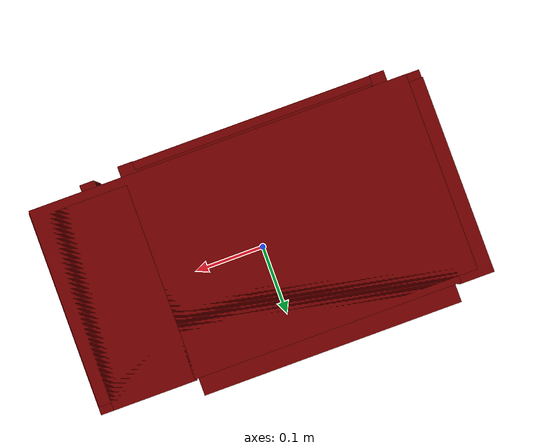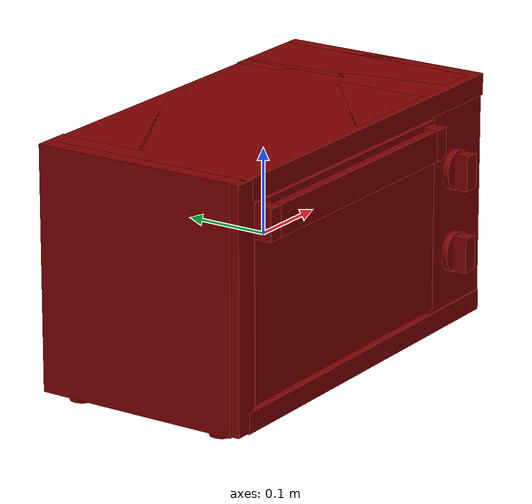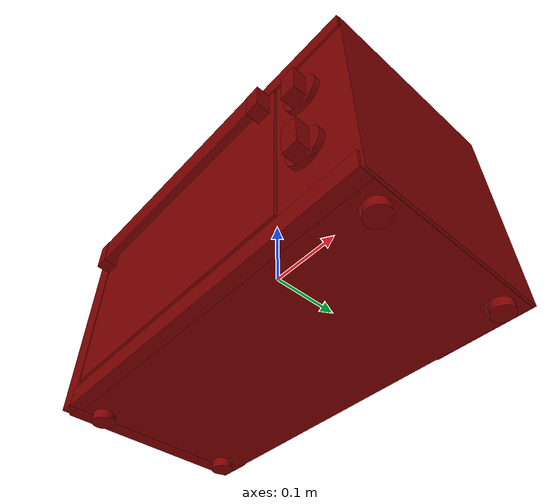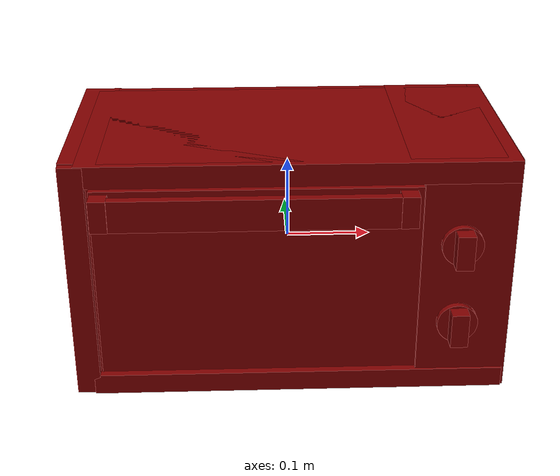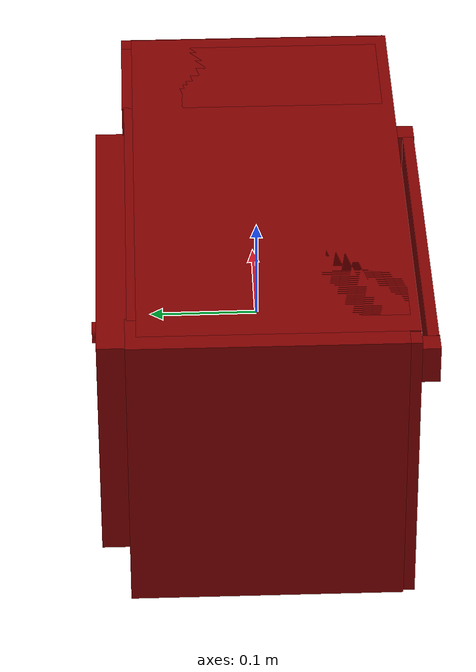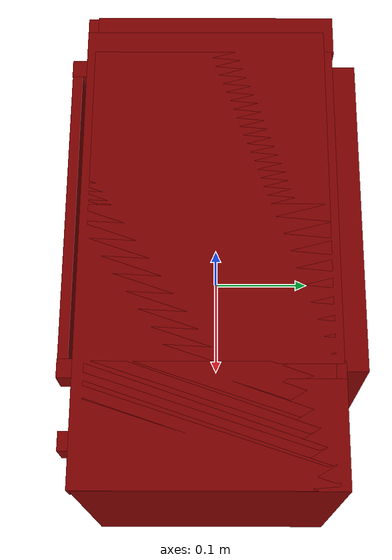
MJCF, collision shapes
<?xml version='1.0' encoding='UTF-8'?>
<mujoco model="model">
  <option timestep="0.002" gravity="0.0 0.0 -9.81"/>
  <compiler angle="radian"/>
  <asset>
    <mesh file="visuals/door.obj" name="door_vis"/>
    <mesh file="visuals/knob_temp.obj" name="knob_temp_vis"/>
    <mesh file="visuals/knob_time.obj" name="knob_time_vis"/>
    <mesh file="visuals/rack0.obj" name="rack0_vis"/>
    <mesh file="visuals/Body001.obj" name="Body001_vis"/>
    <mesh file="visuals/window.obj" name="window_vis"/>
    <texture file="visuals/T_BC001.png" name="Body001_material" type="2d"/>
    <material name="Body001_material" rgba="1 1 1 1.0" texture="Body001_material" shininess="0.4472135901451111" specular="0.5"/>
    <texture file="visuals/T_BC001.png" name="door_material" type="2d"/>
    <material name="door_material" rgba="1 1 1 1.0" texture="door_material" shininess="0.4472135901451111" specular="0.5"/>
    <material name="window_material" rgba="0.04863417148590088 0.04863417148590088 0.04863417148590088 0.699999988079071" shininess="0.5" specular="0.3103448502657381"/>
    <texture file="visuals/T_BC001.png" name="knob_temp_material" type="2d"/>
    <material name="knob_temp_material" rgba="1 1 1 1.0" texture="knob_temp_material" shininess="0.4472135901451111" specular="0.3103448502657381"/>
    <texture file="visuals/T_BC001.png" name="knob_time_material" type="2d"/>
    <material name="knob_time_material" rgba="1 1 1 1.0" texture="knob_time_material" shininess="0.4472135901451111" specular="0.3103448502657381"/>
    <texture file="visuals/T_BC001.png" name="rack0_material" type="2d"/>
    <material name="rack0_material" rgba="1 1 1 1.0" texture="rack0_material" shininess="0.4472135901451111" specular="5"/>
  </asset>
  <default>
    <default class="visual">
      <geom conaffinity="0" contype="0" group="1" type="mesh"/>
    </default>
    <default class="collision">
      <geom group="0" rgba="0.5 0 0 0.5"/>
    </default>
    <default class="spawn">
      <geom group="0" rgba="1 1 1 0.5" contype="0" conaffinity="0"/>
      <site group="0" rgba="1 1 1 0.5"/>
    </default>
    <default class="region">
      <geom group="1" conaffinity="0" contype="0" rgba="0 1 0 0"/>
    </default>
  </default>
  <worldbody>
    <body>
      <body name="object">
        <geom mesh="Body001_vis" type="mesh" solimp="0.998 0.998 0.001" solref="0.001 1" friction="0.95 0.3 0.1" class="visual" material="Body001_material"/>
        <geom class="collision" type="box" pos="-0.22795536 -0.00107762 0.00606444" size="0.022148093208670616 0.1243620216846466 0.14288678765296936" quat="1.0 0.0 0.0 0.0"/>
        <geom class="collision" type="box" pos="0.19763994 -0.00470167 0.00606368" size="0.05246393010020256 0.12798750400543213 0.14288769662380219" quat="1.0 0.0 0.0 0.0"/>
        <geom class="collision" type="box" pos="-0.03890235 -0.00305786 0.12786792" size="0.16948284208774567 0.12456328421831131 0.02108347974717617" quat="1.0 0.0 0.0 0.0"/>
        <geom class="collision" type="box" pos="0.00921737 0.00114556 -0.10906255" size="0.23752473294734955 0.11962851136922836 0.028542086482048035" quat="1.0 0.0 0.0 0.0"/>
        <geom class="collision" type="box" pos="-0.03890235 0.13382314 0.00413633" size="0.16952092945575714 0.015192313119769096 0.11441542953252792" quat="1.0 0.0 0.0 0.0"/>
        <geom class="collision" type="box" pos="0.21565437 0.12831008 -0.07696842" size="0.006545425392687321 0.00553168123587966 0.014809888787567616" quat="1.0 0.0 0.0 0.0"/>
        <geom class="collision" type="cylinder" pos="0.22713256 -0.09319206 -0.14285089" size="0.013967673294246197 0.006100516766309738" quat="1.0 0.0 0.0 0.0"/>
        <geom class="collision" type="cylinder" pos="0.22713256 0.09379687 -0.14285089" size="0.013967673294246197 0.006100516766309738" quat="1.0 0.0 0.0 0.0"/>
        <geom class="collision" type="cylinder" pos="-0.21936783 -0.09319206 -0.14285089" size="0.013967673294246197 0.006100516766309738" quat="1.0 0.0 0.0 0.0"/>
        <geom class="collision" type="cylinder" pos="-0.21936783 0.09379687 -0.14285089" size="0.013967673294246197 0.006100516766309738" quat="1.0 0.0 0.0 0.0"/>
        <geom class="collision" type="cylinder" pos="0.06642604 0.15311574 -0.06977616" size="0.010296694934368134 0.004649082664400339" quat="0.7071068286895752 0.7071067690849304 1.5700924318127872e-16 5.9269340452702814e-24"/>
        <geom class="collision" type="box" pos="0.00856323 -0.01115704 0.13620408" size="0.2407660186290741 0.12456387281417847 0.012747327797114849" quat="1.0 0.0 0.0 0.0"/>
        <geom class="collision" type="box" pos="-0.23566570 -0.01115704 0.00640537" size="0.013420602306723595 0.12456393241882324 0.14158637821674347" quat="1.0 0.0 0.0 0.0"/>
        <geom class="collision" type="box" pos="0.00886485 -0.01115703 -0.12501262" size="0.23789304494857788 0.12456400692462921 0.012132142670452595" quat="1.0 0.0 0.0 0.0"/>
        <geom class="collision" type="box" pos="0.18133837 -0.00077557 0.00606371" size="0.05288780853152275 0.12406141310930252 0.14288772642612457" quat="1.0 0.0 0.0 0.0"/>
        <body name="door">
          <joint axis="1.0 0.0 0.0" pos="-0.03727262 -0.13528035 -0.10794213" limited="true" name="door_joint" range="0.0 1.4707963267948966" type="hinge" damping="1" frictionloss="1" armature=".01" stiffness="0.05"/>
          <geom mesh="door_vis" type="mesh" solimp="0.998 0.998 0.001" solref="0.001 1" friction="0.95 0.3 0.1" class="visual" material="door_material"/>
          <geom class="collision" type="box" pos="-0.03727263 -0.13204323 0.00679016" size="0.18119259178638458 0.0037460634484887123 0.1135236844420433" quat="1.0 0.0 0.0 0.0"/>
          <geom class="collision" type="box" pos="-0.04012474 -0.14966810 0.09875000" size="0.1574653536081314 0.005251881666481495 0.01837090216577053" quat="1.0 0.0 0.0 0.0" name="door_handle_main"/>
          <geom class="collision" type="box" pos="-0.20732582 -0.14487738 0.09875000" size="0.009648256935179234 0.010504038073122501 0.018370632082223892" quat="1.0 0.0 0.0 0.0"/>
          <geom class="collision" type="box" pos="0.12695737 -0.14487738 0.09875000" size="0.009648265317082405 0.010504046455025673 0.018370646983385086" quat="1.0 0.0 0.0 0.0"/>
          <geom class="collision" type="box" pos="-0.03727263 -0.13204323 0.00679016" size="0.18119259178638458 0.0037460634484887123 0.1135236844420433" quat="1.0 0.0 0.0 0.0" name="door_main"/>
          <body name="window">
            <geom mesh="window_vis" type="mesh" solimp="0.998 0.998 0.001" solref="0.001 1" friction="0.95 0.3 0.1" class="visual" material="window_material"/>
            <geom class="collision" type="box" pos="-0.03720898 -0.13318857 0.00427737" size="0.12574484944343567 0.0007578437798656523 0.06399784237146378" quat="1.0 0.0 0.0 0.0"/>
          </body>
        </body>
        <body name="knob_temp">
          <joint axis="0.0 1.0 0.0" pos="0.18933011 -0.14547942 0.04968340" limited="true" name="knob_temp_joint" range="0.0 5.515240436302081" type="hinge" damping="0.05" frictionloss="0.75" armature="1"/>
          <geom mesh="knob_temp_vis" type="mesh" solimp="0.998 0.998 0.001" solref="0.001 1" friction="0.95 0.3 0.1" class="visual" material="knob_temp_material"/>
          <geom class="collision" type="cylinder" pos="0.18942526 -0.13702001 0.04971660" size="0.023427261039614677 0.0037564656231552362" quat="0.7071068286895752 0.7071067690849304 1.5700924318127872e-16 5.9269340452702814e-24" friction="100 0.5 0.01"/>
          <geom class="collision" type="box" pos="0.18947303 -0.14932560 0.04958813" size="0.00996814202517271 0.008936640806496143 0.02056089974939823" quat="1.0 0.0 0.0 0.0" name="knob_temp_main" friction="100 0.5 0.01"/>
        </body>
        <body name="knob_time">
          <joint axis="0.0 1.0 0.0" pos="0.18933011 -0.14547942 -0.04887785" limited="true" name="knob_time_joint" range="0.0 5.515240436302081" type="hinge" damping="0.05" frictionloss="0.75" armature="1"/>
          <geom mesh="knob_time_vis" type="mesh" solimp="0.998 0.998 0.001" solref="0.001 1" friction="0.95 0.3 0.1" class="visual" material="knob_time_material"/>
          <geom class="collision" type="cylinder" pos="0.18942526 -0.13702001 -0.04884464" size="0.023427261039614677 0.0037564656231552362" quat="0.7071068286895752 0.7071067690849304 1.5700924318127872e-16 5.9269340452702814e-24" friction="100 0.5 0.01"/>
          <geom class="collision" type="box" pos="0.18947303 -0.14932560 -0.04897311" size="0.00996814202517271 0.008936640806496143 0.02056089974939823" quat="1.0 0.0 0.0 0.0" name="knob_time_main" friction="100 0.5 0.01"/>
        </body>
        <body name="rack0">
          <geom class="region" name="reg_rack0" type="box" pos="-0.03796504999999999 -0.008828434999999996 0.053143565000000004" size="0.14655289 0.084497895 0.051482235"/>
          <joint axis="0.0 -1.0 0.0" pos="-0.03860218 -0.00912602 0.00075089" limited="true" name="rack0_joint" range="0.0 0.15" type="slide" damping="1" frictionloss="1" armature=".01" stiffness="0.05"/>
          <geom mesh="rack0_vis" type="mesh" solimp="0.998 0.998 0.001" solref="0.001 1" friction="0.95 0.3 0.1" class="visual" material="rack0_material"/>
          <geom class="collision" type="box" pos="-0.03871345 -0.00908843 0.00068610" size="0.16692422330379486 0.08735256642103195 0.00152203522156924" quat="1.0 0.0 0.0 0.0"/>
        </body>
        <geom class="region" name="reg_main" type="box" pos="1.900000000110147e-07 0.01098776 0.0" size="0.25110365 0.14777706000000002 0.14995141"/>
      </body>
    </body>
  </worldbody>
  <actuator>
    <motor name="door_joint_actuator" joint="door_joint" gear="50"/>
    <motor name="knob_temp_joint_actuator" joint="knob_temp_joint" gear="50"/>
    <motor name="knob_time_joint_actuator" joint="knob_time_joint" gear="50"/>
    <motor name="rack0_joint_actuator" joint="rack0_joint" gear="50"/>
  </actuator>
</mujoco>
